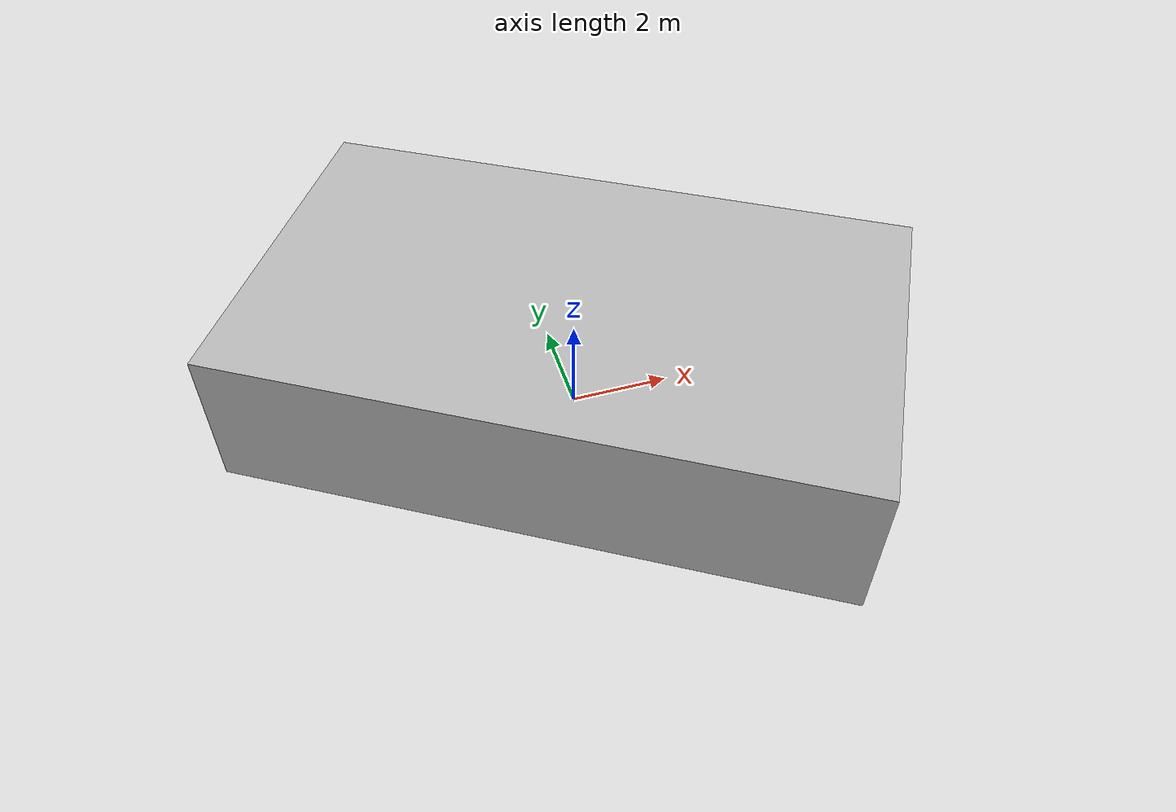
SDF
<?xml version="1.0" ?>
<sdf version="1.7">
  <model name="building_6926_actual_a_ruinas">
    <static>true</static>
    <link name="building_link">
      <visual name="building_visual">
        <geometry>
          <mesh>
            <uri>model://building_6926_actual_a_ruinas/meshes/construction_6926_actual_A_Ruinas_h3m.obj</uri>
          </mesh>
        </geometry>
      </visual>
    <collision name="building_collision">
      <geometry>
        <mesh>
          <uri>model://building_6926_actual_a_ruinas/meshes/construction_6926_actual_A_Ruinas_h3m.obj</uri>
        </mesh>
      </geometry>
    </collision>
    </link>
  </model>
</sdf>
